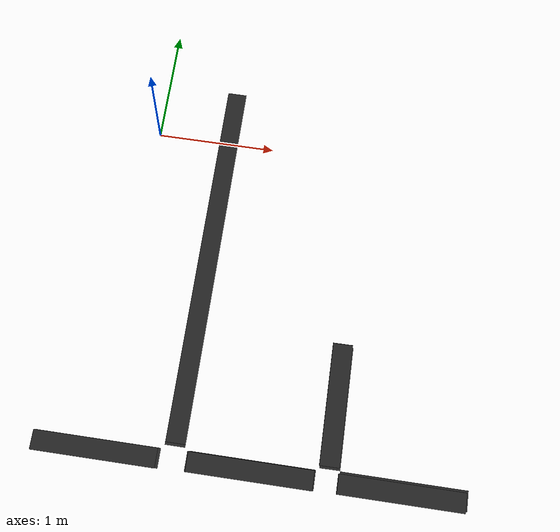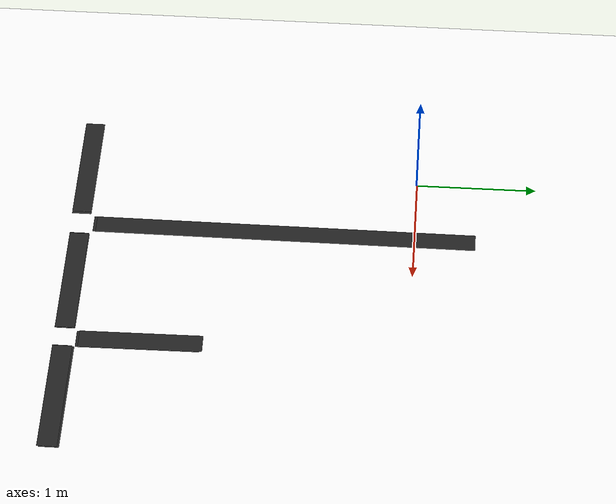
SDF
<sdf version="1.7">
 <world name="default">
  <model name="ground_plane">
   <static>1</static>
   <link name="link">
    <collision name="collision">
     <geometry><plane><normal>0 0 1</normal><size>100 100</size></plane></geometry>
     <surface>
      <contact><collide_bitmask>65535</collide_bitmask></contact>
      <friction><ode><mu>100</mu><mu2>50</mu2></ode></friction>
     </surface>
    </collision>
    <visual name="visual">
     <cast_shadows>0</cast_shadows>
     <geometry><plane><normal>0 0 1</normal><size>100 100</size></plane></geometry>
     <material>
      <script><uri>file://media/materials/scripts/gazebo.material</uri><name>Gazebo/White</name></script>
     </material>
    </visual>
   </link>
  </model>
  <model name="unit_box_clone_0_clone_clone_0">
   <link name="link">
    <inertial>
     <mass>1</mass>
     <inertia>
      <ixx>0.166667</ixx>
      <ixy>0</ixy>
      <ixz>0</ixz>
      <iyy>0.166667</iyy>
      <iyz>0</iyz>
      <izz>0.166667</izz>
     </inertia>
    </inertial>
    <visual name="visual">
     <geometry><box><size>1 0.160776 0.000937</size></box></geometry>
     <material>
      <script><name>Gazebo/Black</name><uri>file://media/materials/scripts/gazebo.material</uri></script>
      <shader type="pixel"><normal_map>__default__</normal_map></shader>
      <ambient>0 0 0 1</ambient>
      <diffuse>0 0 0 1</diffuse>
      <specular>0.1 0.1 0.1 1</specular>
      <emissive>0 0 0 1</emissive>
     </material>
    </visual>
    <collision name="collision">
     <geometry><box><size>1 0.160776 0.000937</size></box></geometry>
     <surface>
      <friction>
       <ode><mu>1</mu><mu2>1</mu2><fdir1>0 0 0</fdir1><slip1>0</slip1><slip2>0</slip2></ode>
       <torsional>
        <coefficient>1</coefficient>
        <patch_radius>0</patch_radius>
        <surface_radius>0</surface_radius>
        <use_patch_radius>1</use_patch_radius>
        <ode><slip>0</slip></ode>
       </torsional>
      </friction>
      <bounce><restitution_coefficient>0</restitution_coefficient><threshold>1e+06</threshold></bounce>
      <contact>
       <collide_without_contact>0</collide_without_contact>
       <collide_without_contact_bitmask>1</collide_without_contact_bitmask>
       <collide_bitmask>1</collide_bitmask>
       <ode>
        <soft_cfm>0</soft_cfm>
        <soft_erp>0.2</soft_erp>
        <kp>1e+13</kp>
        <kd>1</kd>
        <max_vel>0.01</max_vel>
        <min_depth>0</min_depth>
       </ode>
       <bullet>
        <split_impulse>1</split_impulse>
        <split_impulse_penetration_threshold>-0.01</split_impulse_penetration_threshold>
        <soft_cfm>0</soft_cfm>
        <soft_erp>0.2</soft_erp>
        <kp>1e+13</kp>
        <kd>1</kd>
       </bullet>
      </contact>
     </surface>
    </collision>
   </link>
   <static>0</static>
   <pose>-0.008686 -2.79023 0.002211 -2e-06 -1.2e-05 -0.000646</pose>
  </model>
  <model name="unit_box_clone_0_clone_clone_clone_clone_clone_clone_clone_0_clone">
   <link name="link">
    <inertial>
     <mass>1</mass>
     <inertia>
      <ixx>0.166667</ixx>
      <ixy>0</ixy>
      <ixz>0</ixz>
      <iyy>0.166667</iyy>
      <iyz>0</iyz>
      <izz>0.166667</izz>
     </inertia>
    </inertial>
    <visual name="visual">
     <geometry><box><size>3.16167 0.161571 0.000937</size></box></geometry>
     <material>
      <script><name>Gazebo/Black</name><uri>file://media/materials/scripts/gazebo.material</uri></script>
      <shader type="pixel"><normal_map>__default__</normal_map></shader>
      <ambient>0 0 0 1</ambient>
      <diffuse>0 0 0 1</diffuse>
      <specular>0.1 0.1 0.1 1</specular>
      <emissive>0 0 0 1</emissive>
     </material>
    </visual>
    <collision name="collision">
     <geometry><box><size>3.16167 0.161571 0.000937</size></box></geometry>
     <surface>
      <friction>
       <ode><mu>1</mu><mu2>1</mu2><fdir1>0 0 0</fdir1><slip1>0</slip1><slip2>0</slip2></ode>
       <torsional>
        <coefficient>1</coefficient>
        <patch_radius>0</patch_radius>
        <surface_radius>0</surface_radius>
        <use_patch_radius>1</use_patch_radius>
        <ode><slip>0</slip></ode>
       </torsional>
      </friction>
      <bounce><restitution_coefficient>0</restitution_coefficient><threshold>1e+06</threshold></bounce>
      <contact>
       <collide_without_contact>0</collide_without_contact>
       <collide_without_contact_bitmask>1</collide_without_contact_bitmask>
       <collide_bitmask>1</collide_bitmask>
       <ode>
        <soft_cfm>0</soft_cfm>
        <soft_erp>0.2</soft_erp>
        <kp>1e+13</kp>
        <kd>1</kd>
        <max_vel>0.01</max_vel>
        <min_depth>0</min_depth>
       </ode>
       <bullet>
        <split_impulse>1</split_impulse>
        <split_impulse_penetration_threshold>-0.01</split_impulse_penetration_threshold>
        <soft_cfm>0</soft_cfm>
        <soft_erp>0.2</soft_erp>
        <kp>1e+13</kp>
        <kd>1</kd>
       </bullet>
      </contact>
     </surface>
    </collision>
   </link>
   <static>0</static>
   <pose>0.602322 -1.09658 -4e-05 6e-06 -0.000322 -1.57395</pose>
  </model>
  <model name="unit_box_clone_0_clone_clone_0_clone">
   <link name="link">
    <inertial>
     <mass>1</mass>
     <inertia>
      <ixx>0.166667</ixx>
      <ixy>0</ixy>
      <ixz>0</ixz>
      <iyy>0.166667</iyy>
      <iyz>0</iyz>
      <izz>0.166667</izz>
     </inertia>
    </inertial>
    <visual name="visual">
     <geometry><box><size>1 0.160776 0.000937</size></box></geometry>
     <material>
      <script><name>Gazebo/Black</name><uri>file://media/materials/scripts/gazebo.material</uri></script>
      <shader type="pixel"><normal_map>__default__</normal_map></shader>
      <ambient>0 0 0 1</ambient>
      <diffuse>0 0 0 1</diffuse>
      <specular>0.1 0.1 0.1 1</specular>
      <emissive>0 0 0 1</emissive>
     </material>
    </visual>
    <collision name="collision">
     <geometry><box><size>1 0.160776 0.000937</size></box></geometry>
     <surface>
      <friction>
       <ode><mu>1</mu><mu2>1</mu2><fdir1>0 0 0</fdir1><slip1>0</slip1><slip2>0</slip2></ode>
       <torsional>
        <coefficient>1</coefficient>
        <patch_radius>0</patch_radius>
        <surface_radius>0</surface_radius>
        <use_patch_radius>1</use_patch_radius>
        <ode><slip>0</slip></ode>
       </torsional>
      </friction>
      <bounce><restitution_coefficient>0</restitution_coefficient><threshold>1e+06</threshold></bounce>
      <contact>
       <collide_without_contact>0</collide_without_contact>
       <collide_without_contact_bitmask>1</collide_without_contact_bitmask>
       <collide_bitmask>1</collide_bitmask>
       <ode>
        <soft_cfm>0</soft_cfm>
        <soft_erp>0.2</soft_erp>
        <kp>1e+13</kp>
        <kd>1</kd>
        <max_vel>0.01</max_vel>
        <min_depth>0</min_depth>
       </ode>
       <bullet>
        <split_impulse>1</split_impulse>
        <split_impulse_penetration_threshold>-0.01</split_impulse_penetration_threshold>
        <soft_cfm>0</soft_cfm>
        <soft_erp>0.2</soft_erp>
        <kp>1e+13</kp>
        <kd>1</kd>
       </bullet>
      </contact>
     </surface>
    </collision>
   </link>
   <static>0</static>
   <pose>1.21707 -2.77877 0.001392 -5e-06 2.8e-05 -3.8e-05</pose>
  </model>
  <model name="unit_box_clone_0_clone_clone_0_clone_clone_0">
   <link name="link">
    <inertial>
     <mass>1</mass>
     <inertia>
      <ixx>0.166667</ixx>
      <ixy>0</ixy>
      <ixz>0</ixz>
      <iyy>0.166667</iyy>
      <iyz>0</iyz>
      <izz>0.166667</izz>
     </inertia>
    </inertial>
    <visual name="visual">
     <geometry><box><size>1 0.160776 0.000937</size></box></geometry>
     <material>
      <script><name>Gazebo/Black</name><uri>file://media/materials/scripts/gazebo.material</uri></script>
      <shader type="pixel"><normal_map>__default__</normal_map></shader>
      <ambient>0 0 0 1</ambient>
      <diffuse>0 0 0 1</diffuse>
      <specular>0.1 0.1 0.1 1</specular>
      <emissive>0 0 0 1</emissive>
     </material>
    </visual>
    <collision name="collision">
     <geometry><box><size>1 0.160776 0.000937</size></box></geometry>
     <surface>
      <friction>
       <ode><mu>1</mu><mu2>1</mu2><fdir1>0 0 0</fdir1><slip1>0</slip1><slip2>0</slip2></ode>
       <torsional>
        <coefficient>1</coefficient>
        <patch_radius>0</patch_radius>
        <surface_radius>0</surface_radius>
        <use_patch_radius>1</use_patch_radius>
        <ode><slip>0</slip></ode>
       </torsional>
      </friction>
      <bounce><restitution_coefficient>0</restitution_coefficient><threshold>1e+06</threshold></bounce>
      <contact>
       <collide_without_contact>0</collide_without_contact>
       <collide_without_contact_bitmask>1</collide_without_contact_bitmask>
       <collide_bitmask>1</collide_bitmask>
       <ode>
        <soft_cfm>0</soft_cfm>
        <soft_erp>0.2</soft_erp>
        <kp>1e+13</kp>
        <kd>1</kd>
        <max_vel>0.01</max_vel>
        <min_depth>0</min_depth>
       </ode>
       <bullet>
        <split_impulse>1</split_impulse>
        <split_impulse_penetration_threshold>-0.01</split_impulse_penetration_threshold>
        <soft_cfm>0</soft_cfm>
        <soft_erp>0.2</soft_erp>
        <kp>1e+13</kp>
        <kd>1</kd>
       </bullet>
      </contact>
     </surface>
    </collision>
   </link>
   <static>0</static>
   <pose>2.40671 -2.76247 0.001279 2e-06 -1.2e-05 0.000249</pose>
  </model>
  <model name="unit_box_clone_0_clone_clone_0_clone_clone_clone_0">
   <link name="link">
    <inertial>
     <mass>1</mass>
     <inertia>
      <ixx>0.166667</ixx>
      <ixy>0</ixy>
      <ixz>0</ixz>
      <iyy>0.166667</iyy>
      <iyz>0</iyz>
      <izz>0.166667</izz>
     </inertia>
    </inertial>
    <visual name="visual">
     <geometry><box><size>1 0.160776 0.000937</size></box></geometry>
     <material>
      <script><name>Gazebo/Black</name><uri>file://media/materials/scripts/gazebo.material</uri></script>
      <shader type="pixel"><normal_map>__default__</normal_map></shader>
      <ambient>0 0 0 1</ambient>
      <diffuse>0 0 0 1</diffuse>
      <specular>0.1 0.1 0.1 1</specular>
      <emissive>0 0 0 1</emissive>
     </material>
    </visual>
    <collision name="collision">
     <geometry><box><size>1 0.160776 0.000937</size></box></geometry>
     <surface>
      <friction>
       <ode><mu>1</mu><mu2>1</mu2><fdir1>0 0 0</fdir1><slip1>0</slip1><slip2>0</slip2></ode>
       <torsional>
        <coefficient>1</coefficient>
        <patch_radius>0</patch_radius>
        <surface_radius>0</surface_radius>
        <use_patch_radius>1</use_patch_radius>
        <ode><slip>0</slip></ode>
       </torsional>
      </friction>
      <bounce><restitution_coefficient>0</restitution_coefficient><threshold>1e+06</threshold></bounce>
      <contact>
       <collide_without_contact>0</collide_without_contact>
       <collide_without_contact_bitmask>1</collide_without_contact_bitmask>
       <collide_bitmask>1</collide_bitmask>
       <ode>
        <soft_cfm>0</soft_cfm>
        <soft_erp>0.2</soft_erp>
        <kp>1e+13</kp>
        <kd>1</kd>
        <max_vel>0.01</max_vel>
        <min_depth>0</min_depth>
       </ode>
       <bullet>
        <split_impulse>1</split_impulse>
        <split_impulse_penetration_threshold>-0.01</split_impulse_penetration_threshold>
        <soft_cfm>0</soft_cfm>
        <soft_erp>0.2</soft_erp>
        <kp>1e+13</kp>
        <kd>1</kd>
       </bullet>
      </contact>
     </surface>
    </collision>
   </link>
   <static>0</static>
   <pose>1.81587 -2.15805 0.00219 1e-06 -6.2e-05 -1.56218</pose>
  </model>
  <model name="unit_box_clone_0_clone_clone_0_clone_0_clone_1">
   <link name="link">
    <inertial>
     <mass>1</mass>
     <inertia>
      <ixx>0.166667</ixx>
      <ixy>0</ixy>
      <ixz>0</ixz>
      <iyy>0.166667</iyy>
      <iyz>0</iyz>
      <izz>0.166667</izz>
     </inertia>
    </inertial>
    <visual name="visual">
     <geometry><box><size>1 0.160776 0.000937</size></box></geometry>
     <material>
      <script><name>Gazebo/Black</name><uri>file://media/materials/scripts/gazebo.material</uri></script>
      <shader type="pixel"><normal_map>__default__</normal_map></shader>
      <ambient>0 0 0 1</ambient>
      <diffuse>0 0 0 1</diffuse>
      <specular>0.1 0.1 0.1 1</specular>
      <emissive>0 0 0 1</emissive>
     </material>
    </visual>
    <collision name="collision">
     <geometry><box><size>1 0.160776 0.000937</size></box></geometry>
     <surface>
      <friction>
       <ode><mu>1</mu><mu2>1</mu2><fdir1>0 0 0</fdir1><slip1>0</slip1><slip2>0</slip2></ode>
       <torsional>
        <coefficient>1</coefficient>
        <patch_radius>0</patch_radius>
        <surface_radius>0</surface_radius>
        <use_patch_radius>1</use_patch_radius>
        <ode><slip>0</slip></ode>
       </torsional>
      </friction>
      <bounce><restitution_coefficient>0</restitution_coefficient><threshold>1e+06</threshold></bounce>
      <contact>
       <collide_without_contact>0</collide_without_contact>
       <collide_without_contact_bitmask>1</collide_without_contact_bitmask>
       <collide_bitmask>1</collide_bitmask>
       <ode>
        <soft_cfm>0</soft_cfm>
        <soft_erp>0.2</soft_erp>
        <kp>1e+13</kp>
        <kd>1</kd>
        <max_vel>0.01</max_vel>
        <min_depth>0</min_depth>
       </ode>
       <bullet>
        <split_impulse>1</split_impulse>
        <split_impulse_penetration_threshold>-0.01</split_impulse_penetration_threshold>
        <soft_cfm>0</soft_cfm>
        <soft_erp>0.2</soft_erp>
        <kp>1e+13</kp>
        <kd>1</kd>
       </bullet>
      </contact>
     </surface>
    </collision>
   </link>
   <static>0</static>
   <pose>-0.032189 -2.79106 0.003148 -2e-06 -1.2e-05 -0.000599</pose>
  </model>
  <model name="unit_box_clone_0_clone_clone_0_clone_0_clone_2">
   <link name="link">
    <inertial>
     <mass>1</mass>
     <inertia>
      <ixx>0.166667</ixx>
      <ixy>0</ixy>
      <ixz>0</ixz>
      <iyy>0.166667</iyy>
      <iyz>0</iyz>
      <izz>0.166667</izz>
     </inertia>
    </inertial>
    <visual name="visual">
     <geometry><box><size>1 0.160776 0.000937</size></box></geometry>
     <material>
      <script><name>Gazebo/Black</name><uri>file://media/materials/scripts/gazebo.material</uri></script>
      <shader type="pixel"><normal_map>__default__</normal_map></shader>
      <ambient>0 0 0 1</ambient>
      <diffuse>0 0 0 1</diffuse>
      <specular>0.1 0.1 0.1 1</specular>
      <emissive>0 0 0 1</emissive>
     </material>
    </visual>
    <collision name="collision">
     <geometry><box><size>1 0.160776 0.000937</size></box></geometry>
     <surface>
      <friction>
       <ode><mu>1</mu><mu2>1</mu2><fdir1>0 0 0</fdir1><slip1>0</slip1><slip2>0</slip2></ode>
       <torsional>
        <coefficient>1</coefficient>
        <patch_radius>0</patch_radius>
        <surface_radius>0</surface_radius>
        <use_patch_radius>1</use_patch_radius>
        <ode><slip>0</slip></ode>
       </torsional>
      </friction>
      <bounce><restitution_coefficient>0</restitution_coefficient><threshold>1e+06</threshold></bounce>
      <contact>
       <collide_without_contact>0</collide_without_contact>
       <collide_without_contact_bitmask>1</collide_without_contact_bitmask>
       <collide_bitmask>1</collide_bitmask>
       <ode>
        <soft_cfm>0</soft_cfm>
        <soft_erp>0.2</soft_erp>
        <kp>1e+13</kp>
        <kd>1</kd>
        <max_vel>0.01</max_vel>
        <min_depth>0</min_depth>
       </ode>
       <bullet>
        <split_impulse>1</split_impulse>
        <split_impulse_penetration_threshold>-0.01</split_impulse_penetration_threshold>
        <soft_cfm>0</soft_cfm>
        <soft_erp>0.2</soft_erp>
        <kp>1e+13</kp>
        <kd>1</kd>
       </bullet>
      </contact>
     </surface>
    </collision>
   </link>
   <static>0</static>
   <pose>-0.033339 -2.79176 0.000384 -8e-06 2.5e-05 -0.000284</pose>
  </model>
  <model name="unit_box_clone_0_clone_clone_0_clone_clone_clone_0_clone_0">
   <link name="link">
    <inertial>
     <mass>1</mass>
     <inertia>
      <ixx>0.166667</ixx>
      <ixy>0</ixy>
      <ixz>0</ixz>
      <iyy>0.166667</iyy>
      <iyz>0</iyz>
      <izz>0.166667</izz>
     </inertia>
    </inertial>
    <visual name="visual">
     <geometry><box><size>1 0.160776 0.000937</size></box></geometry>
     <material>
      <script><name>Gazebo/Black</name><uri>file://media/materials/scripts/gazebo.material</uri></script>
      <shader type="pixel"><normal_map>__default__</normal_map></shader>
      <ambient>0 0 0 1</ambient>
      <diffuse>0 0 0 1</diffuse>
      <specular>0.1 0.1 0.1 1</specular>
      <emissive>0 0 0 1</emissive>
     </material>
    </visual>
    <collision name="collision">
     <geometry><box><size>1 0.160776 0.000937</size></box></geometry>
     <surface>
      <friction>
       <ode><mu>1</mu><mu2>1</mu2><fdir1>0 0 0</fdir1><slip1>0</slip1><slip2>0</slip2></ode>
       <torsional>
        <coefficient>1</coefficient>
        <patch_radius>0</patch_radius>
        <surface_radius>0</surface_radius>
        <use_patch_radius>1</use_patch_radius>
        <ode><slip>0</slip></ode>
       </torsional>
      </friction>
      <bounce><restitution_coefficient>0</restitution_coefficient><threshold>1e+06</threshold></bounce>
      <contact>
       <collide_without_contact>0</collide_without_contact>
       <collide_without_contact_bitmask>1</collide_without_contact_bitmask>
       <collide_bitmask>1</collide_bitmask>
       <ode>
        <soft_cfm>0</soft_cfm>
        <soft_erp>0.2</soft_erp>
        <kp>1e+13</kp>
        <kd>1</kd>
        <max_vel>0.01</max_vel>
        <min_depth>0</min_depth>
       </ode>
       <bullet>
        <split_impulse>1</split_impulse>
        <split_impulse_penetration_threshold>-0.01</split_impulse_penetration_threshold>
        <soft_cfm>0</soft_cfm>
        <soft_erp>0.2</soft_erp>
        <kp>1e+13</kp>
        <kd>1</kd>
       </bullet>
      </contact>
     </surface>
    </collision>
   </link>
   <static>0</static>
   <pose>1.81464 -2.15601 0.000408 0 0.000122 -1.56207</pose>
  </model>
  <model name="unit_box_clone_0_clone_clone_0_clone_clone_clone_0_clone_1">
   <link name="link">
    <inertial>
     <mass>1</mass>
     <inertia>
      <ixx>0.166667</ixx>
      <ixy>0</ixy>
      <ixz>0</ixz>
      <iyy>0.166667</iyy>
      <iyz>0</iyz>
      <izz>0.166667</izz>
     </inertia>
    </inertial>
    <visual name="visual">
     <geometry><box><size>1 0.160776 0.000937</size></box></geometry>
     <material>
      <script><name>Gazebo/Black</name><uri>file://media/materials/scripts/gazebo.material</uri></script>
      <shader type="pixel"><normal_map>__default__</normal_map></shader>
      <ambient>0 0 0 1</ambient>
      <diffuse>0 0 0 1</diffuse>
      <specular>0.1 0.1 0.1 1</specular>
      <emissive>0 0 0 1</emissive>
     </material>
    </visual>
    <collision name="collision">
     <geometry><box><size>1 0.160776 0.000937</size></box></geometry>
     <surface>
      <friction>
       <ode><mu>1</mu><mu2>1</mu2><fdir1>0 0 0</fdir1><slip1>0</slip1><slip2>0</slip2></ode>
       <torsional>
        <coefficient>1</coefficient>
        <patch_radius>0</patch_radius>
        <surface_radius>0</surface_radius>
        <use_patch_radius>1</use_patch_radius>
        <ode><slip>0</slip></ode>
       </torsional>
      </friction>
      <bounce><restitution_coefficient>0</restitution_coefficient><threshold>1e+06</threshold></bounce>
      <contact>
       <collide_without_contact>0</collide_without_contact>
       <collide_without_contact_bitmask>1</collide_without_contact_bitmask>
       <collide_bitmask>1</collide_bitmask>
       <ode>
        <soft_cfm>0</soft_cfm>
        <soft_erp>0.2</soft_erp>
        <kp>1e+13</kp>
        <kd>1</kd>
        <max_vel>0.01</max_vel>
        <min_depth>0</min_depth>
       </ode>
       <bullet>
        <split_impulse>1</split_impulse>
        <split_impulse_penetration_threshold>-0.01</split_impulse_penetration_threshold>
        <soft_cfm>0</soft_cfm>
        <soft_erp>0.2</soft_erp>
        <kp>1e+13</kp>
        <kd>1</kd>
       </bullet>
      </contact>
     </surface>
    </collision>
   </link>
   <static>0</static>
   <pose>1.82059 -2.17794 0.001262 1e-06 -4.6e-05 -1.56215</pose>
  </model>
  <model name="unit_box_clone_0_clone_clone_0_clone_clone_0_clone_0">
   <link name="link">
    <inertial>
     <mass>1</mass>
     <inertia>
      <ixx>0.166667</ixx>
      <ixy>0</ixy>
      <ixz>0</ixz>
      <iyy>0.166667</iyy>
      <iyz>0</iyz>
      <izz>0.166667</izz>
     </inertia>
    </inertial>
    <visual name="visual">
     <geometry><box><size>1 0.160776 0.000937</size></box></geometry>
     <material>
      <script><name>Gazebo/Black</name><uri>file://media/materials/scripts/gazebo.material</uri></script>
      <shader type="pixel"><normal_map>__default__</normal_map></shader>
      <ambient>0 0 0 1</ambient>
      <diffuse>0 0 0 1</diffuse>
      <specular>0.1 0.1 0.1 1</specular>
      <emissive>0 0 0 1</emissive>
     </material>
    </visual>
    <collision name="collision">
     <geometry><box><size>1 0.160776 0.000937</size></box></geometry>
     <surface>
      <friction>
       <ode><mu>1</mu><mu2>1</mu2><fdir1>0 0 0</fdir1><slip1>0</slip1><slip2>0</slip2></ode>
       <torsional>
        <coefficient>1</coefficient>
        <patch_radius>0</patch_radius>
        <surface_radius>0</surface_radius>
        <use_patch_radius>1</use_patch_radius>
        <ode><slip>0</slip></ode>
       </torsional>
      </friction>
      <bounce><restitution_coefficient>0</restitution_coefficient><threshold>1e+06</threshold></bounce>
      <contact>
       <collide_without_contact>0</collide_without_contact>
       <collide_without_contact_bitmask>1</collide_without_contact_bitmask>
       <collide_bitmask>1</collide_bitmask>
       <ode>
        <soft_cfm>0</soft_cfm>
        <soft_erp>0.2</soft_erp>
        <kp>1e+13</kp>
        <kd>1</kd>
        <max_vel>0.01</max_vel>
        <min_depth>0</min_depth>
       </ode>
       <bullet>
        <split_impulse>1</split_impulse>
        <split_impulse_penetration_threshold>-0.01</split_impulse_penetration_threshold>
        <soft_cfm>0</soft_cfm>
        <soft_erp>0.2</soft_erp>
        <kp>1e+13</kp>
        <kd>1</kd>
       </bullet>
      </contact>
     </surface>
    </collision>
   </link>
   <static>0</static>
   <pose>2.39875 -2.77951 0.002208 3e-06 -2.8e-05 6.2e-05</pose>
  </model>
  <model name="unit_box_clone_0_clone_clone_0_clone_clone_0_clone_1">
   <link name="link">
    <inertial>
     <mass>1</mass>
     <inertia>
      <ixx>0.166667</ixx>
      <ixy>0</ixy>
      <ixz>0</ixz>
      <iyy>0.166667</iyy>
      <iyz>0</iyz>
      <izz>0.166667</izz>
     </inertia>
    </inertial>
    <visual name="visual">
     <geometry><box><size>1 0.160776 0.000937</size></box></geometry>
     <material>
      <script><name>Gazebo/Black</name><uri>file://media/materials/scripts/gazebo.material</uri></script>
      <shader type="pixel"><normal_map>__default__</normal_map></shader>
      <ambient>0 0 0 1</ambient>
      <diffuse>0 0 0 1</diffuse>
      <specular>0.1 0.1 0.1 1</specular>
      <emissive>0 0 0 1</emissive>
     </material>
    </visual>
    <collision name="collision">
     <geometry><box><size>1 0.160776 0.000937</size></box></geometry>
     <surface>
      <friction>
       <ode><mu>1</mu><mu2>1</mu2><fdir1>0 0 0</fdir1><slip1>0</slip1><slip2>0</slip2></ode>
       <torsional>
        <coefficient>1</coefficient>
        <patch_radius>0</patch_radius>
        <surface_radius>0</surface_radius>
        <use_patch_radius>1</use_patch_radius>
        <ode><slip>0</slip></ode>
       </torsional>
      </friction>
      <bounce><restitution_coefficient>0</restitution_coefficient><threshold>1e+06</threshold></bounce>
      <contact>
       <collide_without_contact>0</collide_without_contact>
       <collide_without_contact_bitmask>1</collide_without_contact_bitmask>
       <collide_bitmask>1</collide_bitmask>
       <ode>
        <soft_cfm>0</soft_cfm>
        <soft_erp>0.2</soft_erp>
        <kp>1e+13</kp>
        <kd>1</kd>
        <max_vel>0.01</max_vel>
        <min_depth>0</min_depth>
       </ode>
       <bullet>
        <split_impulse>1</split_impulse>
        <split_impulse_penetration_threshold>-0.01</split_impulse_penetration_threshold>
        <soft_cfm>0</soft_cfm>
        <soft_erp>0.2</soft_erp>
        <kp>1e+13</kp>
        <kd>1</kd>
       </bullet>
      </contact>
     </surface>
    </collision>
   </link>
   <static>0</static>
   <pose>2.39507 -2.77943 0.000408 1e-06 0.000121 0.00013</pose>
  </model>
  <model name="unit_box_clone_0_clone_clone_clone_clone_clone_clone_clone_0_clone_clone">
   <link name="link">
    <inertial>
     <mass>1</mass>
     <inertia>
      <ixx>0.166667</ixx>
      <ixy>0</ixy>
      <ixz>0</ixz>
      <iyy>0.166667</iyy>
      <iyz>0</iyz>
      <izz>0.166667</izz>
     </inertia>
    </inertial>
    <visual name="visual">
     <geometry><box><size>3.16167 0.161571 0.000937</size></box></geometry>
     <material>
      <script><name>Gazebo/Black</name><uri>file://media/materials/scripts/gazebo.material</uri></script>
      <shader type="pixel"><normal_map>__default__</normal_map></shader>
      <ambient>0 0 0 1</ambient>
      <diffuse>0 0 0 1</diffuse>
      <specular>0.1 0.1 0.1 1</specular>
      <emissive>0 0 0 1</emissive>
     </material>
    </visual>
    <collision name="collision">
     <geometry><box><size>3.16167 0.161571 0.000937</size></box></geometry>
     <surface>
      <friction>
       <ode><mu>1</mu><mu2>1</mu2><fdir1>0 0 0</fdir1><slip1>0</slip1><slip2>0</slip2></ode>
       <torsional>
        <coefficient>1</coefficient>
        <patch_radius>0</patch_radius>
        <surface_radius>0</surface_radius>
        <use_patch_radius>1</use_patch_radius>
        <ode><slip>0</slip></ode>
       </torsional>
      </friction>
      <bounce><restitution_coefficient>0</restitution_coefficient><threshold>1e+06</threshold></bounce>
      <contact>
       <collide_without_contact>0</collide_without_contact>
       <collide_without_contact_bitmask>1</collide_without_contact_bitmask>
       <collide_bitmask>1</collide_bitmask>
       <ode>
        <soft_cfm>0</soft_cfm>
        <soft_erp>0.2</soft_erp>
        <kp>1e+13</kp>
        <kd>1</kd>
        <max_vel>0.01</max_vel>
        <min_depth>0</min_depth>
       </ode>
       <bullet>
        <split_impulse>1</split_impulse>
        <split_impulse_penetration_threshold>-0.01</split_impulse_penetration_threshold>
        <soft_cfm>0</soft_cfm>
        <soft_erp>0.2</soft_erp>
        <kp>1e+13</kp>
        <kd>1</kd>
       </bullet>
      </contact>
     </surface>
    </collision>
   </link>
   <static>0</static>
   <pose>0.602393 -1.07361 0.000893 7e-06 -0.000246 -1.57391</pose>
  </model>
  <model name="unit_box_clone_0_clone_clone_clone_clone_clone_clone_clone_0_clone_clone_0">
   <link name="link">
    <inertial>
     <mass>1</mass>
     <inertia>
      <ixx>0.166667</ixx>
      <ixy>0</ixy>
      <ixz>0</ixz>
      <iyy>0.166667</iyy>
      <iyz>0</iyz>
      <izz>0.166667</izz>
     </inertia>
    </inertial>
    <visual name="visual">
     <geometry><box><size>3.16167 0.161571 0.000937</size></box></geometry>
     <material>
      <script><name>Gazebo/Black</name><uri>file://media/materials/scripts/gazebo.material</uri></script>
      <shader type="pixel"><normal_map>__default__</normal_map></shader>
      <ambient>0 0 0 1</ambient>
      <diffuse>0 0 0 1</diffuse>
      <specular>0.1 0.1 0.1 1</specular>
      <emissive>0 0 0 1</emissive>
     </material>
    </visual>
    <collision name="collision">
     <geometry><box><size>3.16167 0.161571 0.000937</size></box></geometry>
     <surface>
      <friction>
       <ode><mu>1</mu><mu2>1</mu2><fdir1>0 0 0</fdir1><slip1>0</slip1><slip2>0</slip2></ode>
       <torsional>
        <coefficient>1</coefficient>
        <patch_radius>0</patch_radius>
        <surface_radius>0</surface_radius>
        <use_patch_radius>1</use_patch_radius>
        <ode><slip>0</slip></ode>
       </torsional>
      </friction>
      <bounce><restitution_coefficient>0</restitution_coefficient><threshold>1e+06</threshold></bounce>
      <contact>
       <collide_without_contact>0</collide_without_contact>
       <collide_without_contact_bitmask>1</collide_without_contact_bitmask>
       <collide_bitmask>1</collide_bitmask>
       <ode>
        <soft_cfm>0</soft_cfm>
        <soft_erp>0.2</soft_erp>
        <kp>1e+13</kp>
        <kd>1</kd>
        <max_vel>0.01</max_vel>
        <min_depth>0</min_depth>
       </ode>
       <bullet>
        <split_impulse>1</split_impulse>
        <split_impulse_penetration_threshold>-0.01</split_impulse_penetration_threshold>
        <soft_cfm>0</soft_cfm>
        <soft_erp>0.2</soft_erp>
        <kp>1e+13</kp>
        <kd>1</kd>
       </bullet>
      </contact>
     </surface>
    </collision>
   </link>
   <static>0</static>
   <pose>0.602432 -1.08514 -4.1e-05 -1.1e-05 0.000323 -1.57395</pose>
  </model>
  <model name="unit_box_clone_0_clone_clone_0_clone_clone_2">
   <link name="link">
    <inertial>
     <mass>1</mass>
     <inertia>
      <ixx>0.166667</ixx>
      <ixy>0</ixy>
      <ixz>0</ixz>
      <iyy>0.166667</iyy>
      <iyz>0</iyz>
      <izz>0.166667</izz>
     </inertia>
    </inertial>
    <visual name="visual">
     <geometry><box><size>1 0.160776 0.000937</size></box></geometry>
     <material>
      <script><name>Gazebo/Black</name><uri>file://media/materials/scripts/gazebo.material</uri></script>
      <shader type="pixel"><normal_map>__default__</normal_map></shader>
      <ambient>0 0 0 1</ambient>
      <diffuse>0 0 0 1</diffuse>
      <specular>0.1 0.1 0.1 1</specular>
      <emissive>0 0 0 1</emissive>
     </material>
    </visual>
    <collision name="collision">
     <geometry><box><size>1 0.160776 0.000937</size></box></geometry>
     <surface>
      <friction>
       <ode><mu>1</mu><mu2>1</mu2><fdir1>0 0 0</fdir1><slip1>0</slip1><slip2>0</slip2></ode>
       <torsional>
        <coefficient>1</coefficient>
        <patch_radius>0</patch_radius>
        <surface_radius>0</surface_radius>
        <use_patch_radius>1</use_patch_radius>
        <ode><slip>0</slip></ode>
       </torsional>
      </friction>
      <bounce><restitution_coefficient>0</restitution_coefficient><threshold>1e+06</threshold></bounce>
      <contact>
       <collide_without_contact>0</collide_without_contact>
       <collide_without_contact_bitmask>1</collide_without_contact_bitmask>
       <collide_bitmask>1</collide_bitmask>
       <ode>
        <soft_cfm>0</soft_cfm>
        <soft_erp>0.2</soft_erp>
        <kp>1e+13</kp>
        <kd>1</kd>
        <max_vel>0.01</max_vel>
        <min_depth>0</min_depth>
       </ode>
       <bullet>
        <split_impulse>1</split_impulse>
        <split_impulse_penetration_threshold>-0.01</split_impulse_penetration_threshold>
        <soft_cfm>0</soft_cfm>
        <soft_erp>0.2</soft_erp>
        <kp>1e+13</kp>
        <kd>1</kd>
       </bullet>
      </contact>
     </surface>
    </collision>
   </link>
   <static>0</static>
   <pose>1.20825 -2.78365 0.003273 -1.2e-05 1.5e-05 -5.5e-05</pose>
  </model>
  <model name="unit_box_clone_0_clone_clone_0_clone_clone_3">
   <link name="link">
    <inertial>
     <mass>1</mass>
     <inertia>
      <ixx>0.166667</ixx>
      <ixy>0</ixy>
      <ixz>0</ixz>
      <iyy>0.166667</iyy>
      <iyz>0</iyz>
      <izz>0.166667</izz>
     </inertia>
    </inertial>
    <visual name="visual">
     <geometry><box><size>1 0.160776 0.000937</size></box></geometry>
     <material>
      <script><name>Gazebo/Black</name><uri>file://media/materials/scripts/gazebo.material</uri></script>
      <shader type="pixel"><normal_map>__default__</normal_map></shader>
      <ambient>0 0 0 1</ambient>
      <diffuse>0 0 0 1</diffuse>
      <specular>0.1 0.1 0.1 1</specular>
      <emissive>0 0 0 1</emissive>
     </material>
    </visual>
    <collision name="collision">
     <geometry><box><size>1 0.160776 0.000937</size></box></geometry>
     <surface>
      <friction>
       <ode><mu>1</mu><mu2>1</mu2><fdir1>0 0 0</fdir1><slip1>0</slip1><slip2>0</slip2></ode>
       <torsional>
        <coefficient>1</coefficient>
        <patch_radius>0</patch_radius>
        <surface_radius>0</surface_radius>
        <use_patch_radius>1</use_patch_radius>
        <ode><slip>0</slip></ode>
       </torsional>
      </friction>
      <bounce><restitution_coefficient>0</restitution_coefficient><threshold>1e+06</threshold></bounce>
      <contact>
       <collide_without_contact>0</collide_without_contact>
       <collide_without_contact_bitmask>1</collide_without_contact_bitmask>
       <collide_bitmask>1</collide_bitmask>
       <ode>
        <soft_cfm>0</soft_cfm>
        <soft_erp>0.2</soft_erp>
        <kp>1e+13</kp>
        <kd>1</kd>
        <max_vel>0.01</max_vel>
        <min_depth>0</min_depth>
       </ode>
       <bullet>
        <split_impulse>1</split_impulse>
        <split_impulse_penetration_threshold>-0.01</split_impulse_penetration_threshold>
        <soft_cfm>0</soft_cfm>
        <soft_erp>0.2</soft_erp>
        <kp>1e+13</kp>
        <kd>1</kd>
       </bullet>
      </contact>
     </surface>
    </collision>
   </link>
   <static>0</static>
   <pose>1.21478 -2.78344 0.002328 -7e-06 3.1e-05 -0.000111</pose>
  </model>
  <model name="unit_box_clone_0_clone_clone_0_clone_clone_4">
   <link name="link">
    <inertial>
     <mass>1</mass>
     <inertia>
      <ixx>0.166667</ixx>
      <ixy>0</ixy>
      <ixz>0</ixz>
      <iyy>0.166667</iyy>
      <iyz>0</iyz>
      <izz>0.166667</izz>
     </inertia>
    </inertial>
    <visual name="visual">
     <geometry><box><size>1 0.160776 0.000937</size></box></geometry>
     <material>
      <script><name>Gazebo/Black</name><uri>file://media/materials/scripts/gazebo.material</uri></script>
      <shader type="pixel"><normal_map>__default__</normal_map></shader>
      <ambient>0 0 0 1</ambient>
      <diffuse>0 0 0 1</diffuse>
      <specular>0.1 0.1 0.1 1</specular>
      <emissive>0 0 0 1</emissive>
     </material>
    </visual>
    <collision name="collision">
     <geometry><box><size>1 0.160776 0.000937</size></box></geometry>
     <surface>
      <friction>
       <ode><mu>1</mu><mu2>1</mu2><fdir1>0 0 0</fdir1><slip1>0</slip1><slip2>0</slip2></ode>
       <torsional>
        <coefficient>1</coefficient>
        <patch_radius>0</patch_radius>
        <surface_radius>0</surface_radius>
        <use_patch_radius>1</use_patch_radius>
        <ode><slip>0</slip></ode>
       </torsional>
      </friction>
      <bounce><restitution_coefficient>0</restitution_coefficient><threshold>1e+06</threshold></bounce>
      <contact>
       <collide_without_contact>0</collide_without_contact>
       <collide_without_contact_bitmask>1</collide_without_contact_bitmask>
       <collide_bitmask>1</collide_bitmask>
       <ode>
        <soft_cfm>0</soft_cfm>
        <soft_erp>0.2</soft_erp>
        <kp>1e+13</kp>
        <kd>1</kd>
        <max_vel>0.01</max_vel>
        <min_depth>0</min_depth>
       </ode>
       <bullet>
        <split_impulse>1</split_impulse>
        <split_impulse_penetration_threshold>-0.01</split_impulse_penetration_threshold>
        <soft_cfm>0</soft_cfm>
        <soft_erp>0.2</soft_erp>
        <kp>1e+13</kp>
        <kd>1</kd>
       </bullet>
      </contact>
     </surface>
    </collision>
   </link>
   <static>0</static>
   <pose>1.20195 -2.78384 0.000469 -2e-06 -0 -2.6e-05</pose>
  </model>
 </world>
</sdf>
